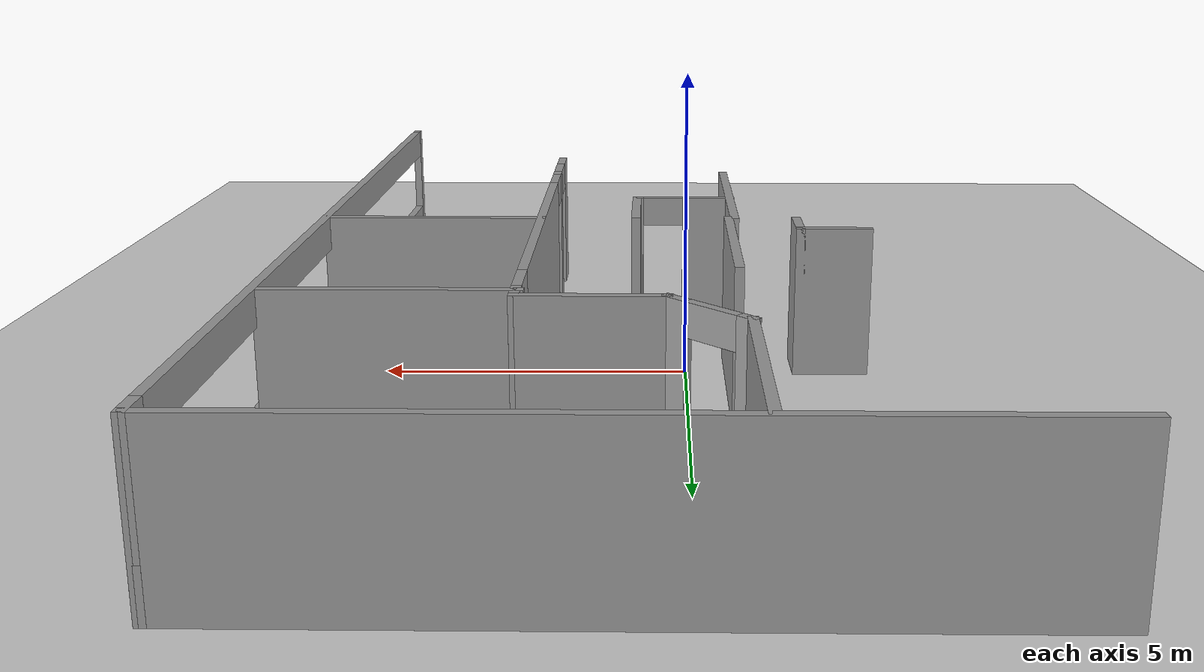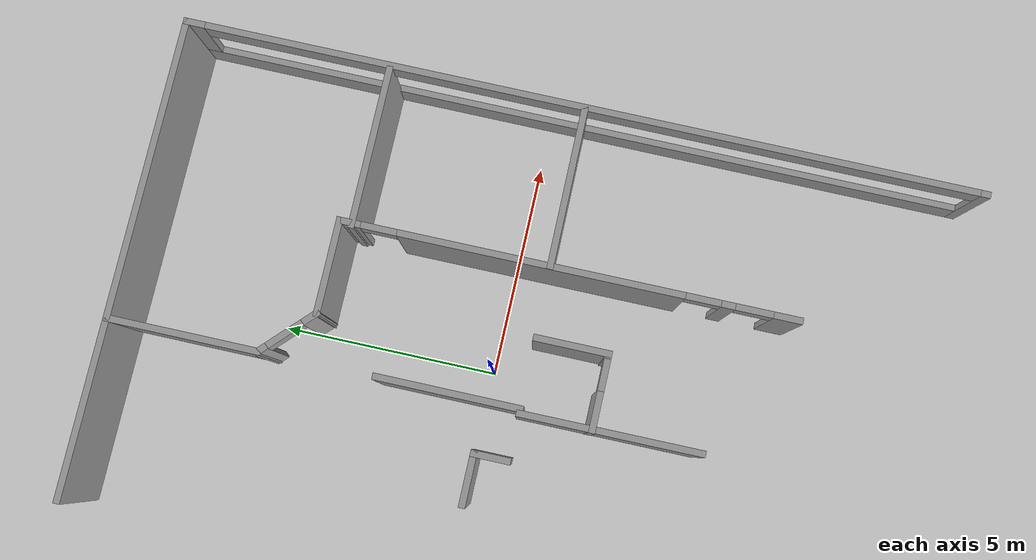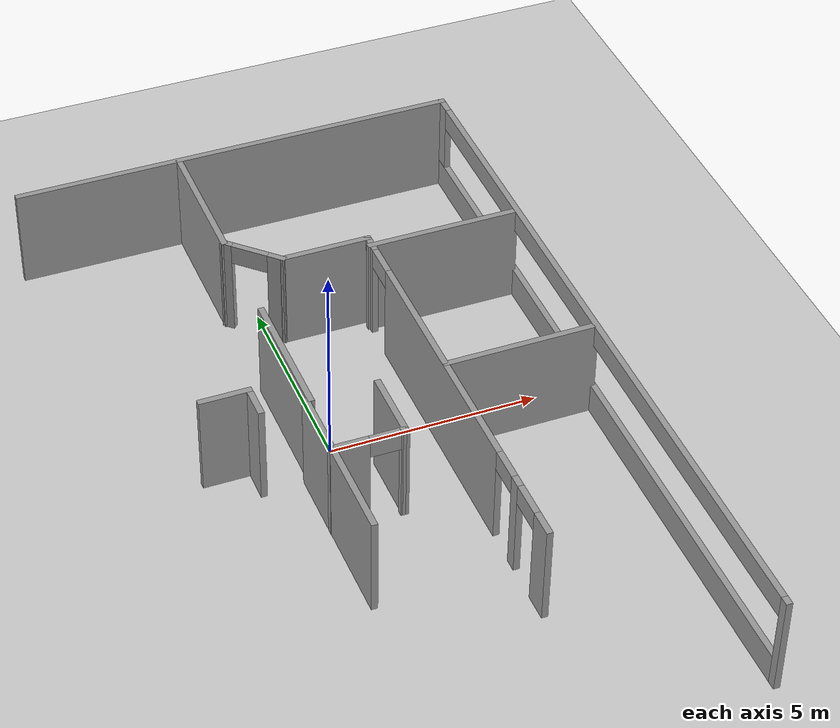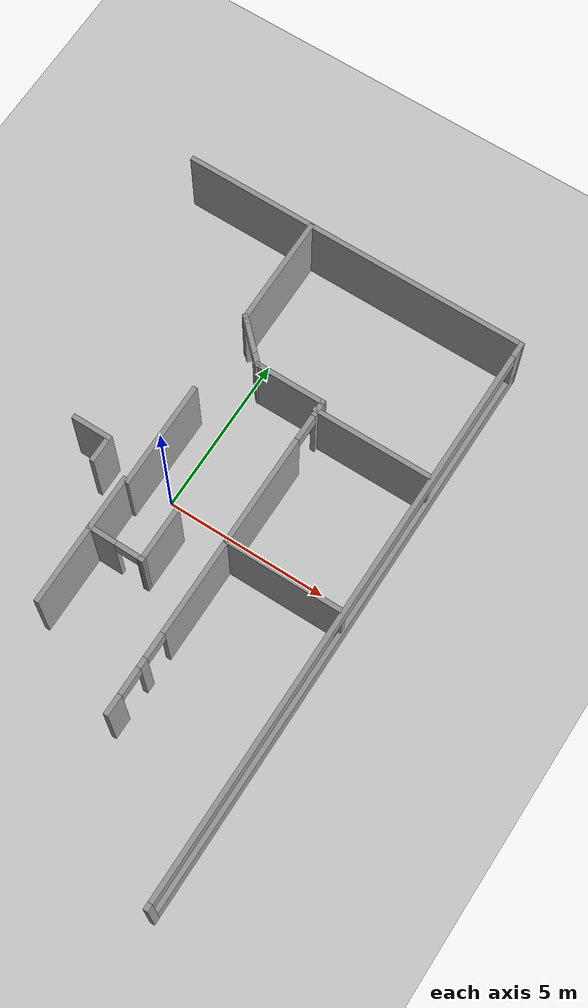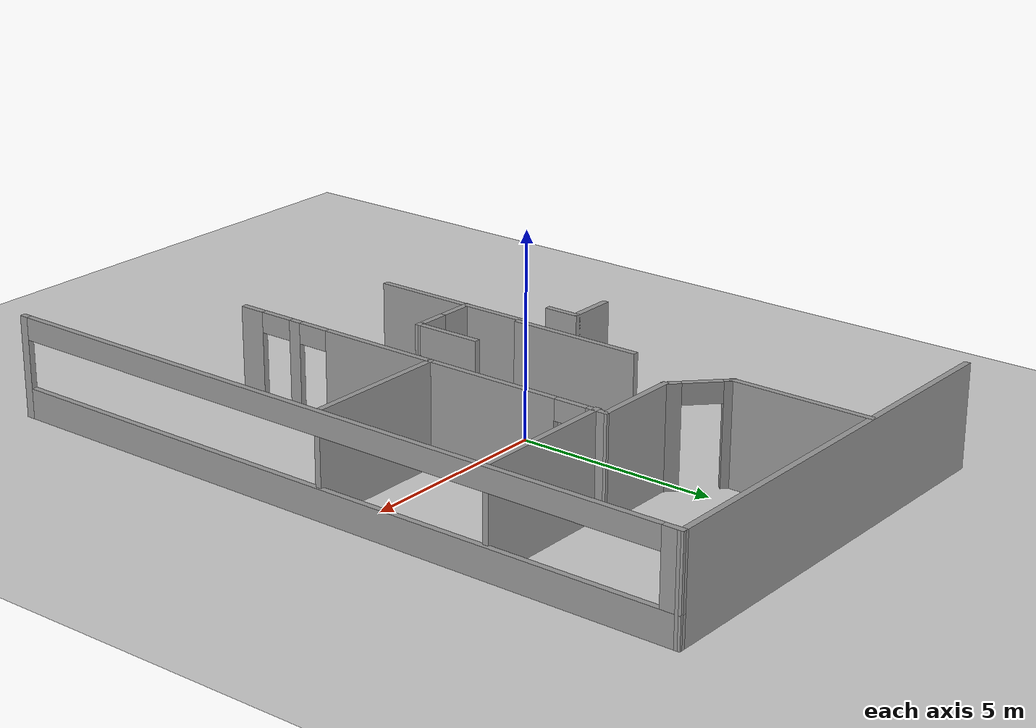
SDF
<sdf version="1.7">
 <world name="default">
  <model name="ground_plane">
   <static>1</static>
   <link name="link">
    <collision name="collision">
     <geometry><plane><normal>0 0 1</normal><size>100 100</size></plane></geometry>
     <surface><friction><ode><mu>100</mu><mu2>50</mu2></ode></friction></surface>
    </collision>
    <visual name="visual">
     <cast_shadows>0</cast_shadows>
     <geometry><plane><normal>0 0 1</normal><size>100 100</size></plane></geometry>
     <material>
      <script><uri>file://media/materials/scripts/gazebo.material</uri><name>Gazebo/Grey</name></script>
     </material>
    </visual>
   </link>
  </model>
  <model name="lake_harbour_office">
   <link name="Wall_1">
    <pose>3.2104 -0.472625 0 0 -0 1.57149</pose>
    <visual name="Wall_1_Visual_3">
     <pose>4.9339 0 1.25 0 -0 0</pose>
     <geometry><box><size>0.54781 0.15 2.5</size></box></geometry>
     <material>
      <script><uri>file://media/materials/scripts/gazebo.material</uri><name>Gazebo/Grey</name></script>
      <ambient>1 1 1 1</ambient>
      <shader type="pixel"/>
     </material>
     <meta><layer>0</layer></meta>
    </visual>
    <visual name="Wall_1_Visual_6">
     <pose>4.25227 0 2.25 0 -0 0</pose>
     <geometry><box><size>0.815447 0.15 0.5</size></box></geometry>
     <material>
      <script><uri>file://media/materials/scripts/gazebo.material</uri><name>Gazebo/Grey</name></script>
      <ambient>1 1 1 1</ambient>
      <shader type="pixel"/>
     </material>
     <meta><layer>0</layer></meta>
    </visual>
    <visual name="Wall_1_Visual_0">
     <pose>-4.88335 0 1.25 0 -0 0</pose>
     <geometry><box><size>0.648917 0.15 2.5</size></box></geometry>
     <material>
      <script><uri>file://media/materials/scripts/gazebo.material</uri><name>Gazebo/Grey</name></script>
      <ambient>1 1 1 1</ambient>
      <shader type="pixel"/>
     </material>
     <meta><layer>0</layer></meta>
    </visual>
    <visual name="Wall_1_Visual_4">
     <pose>-4.1362 0 2.25 0 -0 0</pose>
     <geometry><box><size>0.845376 0.15 0.5</size></box></geometry>
     <material>
      <script><uri>file://media/materials/scripts/gazebo.material</uri><name>Gazebo/Grey</name></script>
      <ambient>1 1 1 1</ambient>
      <shader type="pixel"/>
     </material>
     <meta><layer>0</layer></meta>
    </visual>
    <visual name="Wall_1_Visual_1">
     <pose>-3.55701 0 1.25 0 -0 0</pose>
     <geometry><box><size>0.313004 0.15 2.5</size></box></geometry>
     <material>
      <script><uri>file://media/materials/scripts/gazebo.material</uri><name>Gazebo/Grey</name></script>
      <ambient>1 1 1 1</ambient>
      <shader type="pixel"/>
     </material>
     <meta><layer>0</layer></meta>
    </visual>
    <visual name="Wall_1_Visual_5">
     <pose>-3.00452 0 2.25 0 -0 0</pose>
     <geometry><box><size>0.79198 0.15 0.5</size></box></geometry>
     <material>
      <script><uri>file://media/materials/scripts/gazebo.material</uri><name>Gazebo/Grey</name></script>
      <ambient>1 1 1 1</ambient>
      <shader type="pixel"/>
     </material>
     <meta><layer>0</layer></meta>
    </visual>
    <visual name="Wall_1_Visual_2">
     <pose>0.61801 0 1.25 0 -0 0</pose>
     <geometry><box><size>6.45307 0.15 2.5</size></box></geometry>
     <material>
      <script><uri>file://media/materials/scripts/gazebo.material</uri><name>Gazebo/Grey</name></script>
      <ambient>1 1 1 1</ambient>
      <shader type="pixel"/>
     </material>
     <meta><layer>0</layer></meta>
    </visual>
    <collision name="Wall_1_Collision_2">
     <pose>0.61801 0 1.25 0 -0 0</pose>
     <geometry><box><size>6.45307 0.15 2.5</size></box></geometry>
     <surface>
      <friction>
       <ode><mu>1</mu><mu2>1</mu2><fdir1>0 0 0</fdir1><slip1>0</slip1><slip2>0</slip2></ode>
       <torsional>
        <coefficient>1</coefficient>
        <patch_radius>0</patch_radius>
        <surface_radius>0</surface_radius>
        <use_patch_radius>1</use_patch_radius>
        <ode><slip>0</slip></ode>
       </torsional>
      </friction>
      <bounce><restitution_coefficient>0</restitution_coefficient><threshold>1e+06</threshold></bounce>
      <contact>
       <collide_without_contact>0</collide_without_contact>
       <collide_without_contact_bitmask>1</collide_without_contact_bitmask>
       <collide_bitmask>1</collide_bitmask>
       <ode>
        <soft_cfm>0</soft_cfm>
        <soft_erp>0.2</soft_erp>
        <kp>1e+13</kp>
        <kd>1</kd>
        <max_vel>0.01</max_vel>
        <min_depth>0</min_depth>
       </ode>
       <bullet>
        <split_impulse>1</split_impulse>
        <split_impulse_penetration_threshold>-0.01</split_impulse_penetration_threshold>
        <soft_cfm>0</soft_cfm>
        <soft_erp>0.2</soft_erp>
        <kp>1e+13</kp>
        <kd>1</kd>
       </bullet>
      </contact>
     </surface>
    </collision>
    <collision name="Wall_1_Collision_0">
     <pose>-4.88335 0 1.25 0 -0 0</pose>
     <geometry><box><size>0.648917 0.15 2.5</size></box></geometry>
     <surface>
      <friction>
       <ode><mu>1</mu><mu2>1</mu2><fdir1>0 0 0</fdir1><slip1>0</slip1><slip2>0</slip2></ode>
       <torsional>
        <coefficient>1</coefficient>
        <patch_radius>0</patch_radius>
        <surface_radius>0</surface_radius>
        <use_patch_radius>1</use_patch_radius>
        <ode><slip>0</slip></ode>
       </torsional>
      </friction>
      <bounce><restitution_coefficient>0</restitution_coefficient><threshold>1e+06</threshold></bounce>
      <contact>
       <collide_without_contact>0</collide_without_contact>
       <collide_without_contact_bitmask>1</collide_without_contact_bitmask>
       <collide_bitmask>1</collide_bitmask>
       <ode>
        <soft_cfm>0</soft_cfm>
        <soft_erp>0.2</soft_erp>
        <kp>1e+13</kp>
        <kd>1</kd>
        <max_vel>0.01</max_vel>
        <min_depth>0</min_depth>
       </ode>
       <bullet>
        <split_impulse>1</split_impulse>
        <split_impulse_penetration_threshold>-0.01</split_impulse_penetration_threshold>
        <soft_cfm>0</soft_cfm>
        <soft_erp>0.2</soft_erp>
        <kp>1e+13</kp>
        <kd>1</kd>
       </bullet>
      </contact>
     </surface>
    </collision>
    <collision name="Wall_1_Collision_3">
     <pose>4.9339 0 1.25 0 -0 0</pose>
     <geometry><box><size>0.54781 0.15 2.5</size></box></geometry>
     <surface>
      <friction>
       <ode><mu>1</mu><mu2>1</mu2><fdir1>0 0 0</fdir1><slip1>0</slip1><slip2>0</slip2></ode>
       <torsional>
        <coefficient>1</coefficient>
        <patch_radius>0</patch_radius>
        <surface_radius>0</surface_radius>
        <use_patch_radius>1</use_patch_radius>
        <ode><slip>0</slip></ode>
       </torsional>
      </friction>
      <bounce><restitution_coefficient>0</restitution_coefficient><threshold>1e+06</threshold></bounce>
      <contact>
       <collide_without_contact>0</collide_without_contact>
       <collide_without_contact_bitmask>1</collide_without_contact_bitmask>
       <collide_bitmask>1</collide_bitmask>
       <ode>
        <soft_cfm>0</soft_cfm>
        <soft_erp>0.2</soft_erp>
        <kp>1e+13</kp>
        <kd>1</kd>
        <max_vel>0.01</max_vel>
        <min_depth>0</min_depth>
       </ode>
       <bullet>
        <split_impulse>1</split_impulse>
        <split_impulse_penetration_threshold>-0.01</split_impulse_penetration_threshold>
        <soft_cfm>0</soft_cfm>
        <soft_erp>0.2</soft_erp>
        <kp>1e+13</kp>
        <kd>1</kd>
       </bullet>
      </contact>
     </surface>
    </collision>
    <collision name="Wall_1_Collision_6">
     <pose>4.25227 0 2.25 0 -0 0</pose>
     <geometry><box><size>0.815447 0.15 0.5</size></box></geometry>
     <surface>
      <friction>
       <ode><mu>1</mu><mu2>1</mu2><fdir1>0 0 0</fdir1><slip1>0</slip1><slip2>0</slip2></ode>
       <torsional>
        <coefficient>1</coefficient>
        <patch_radius>0</patch_radius>
        <surface_radius>0</surface_radius>
        <use_patch_radius>1</use_patch_radius>
        <ode><slip>0</slip></ode>
       </torsional>
      </friction>
      <bounce><restitution_coefficient>0</restitution_coefficient><threshold>1e+06</threshold></bounce>
      <contact>
       <collide_without_contact>0</collide_without_contact>
       <collide_without_contact_bitmask>1</collide_without_contact_bitmask>
       <collide_bitmask>1</collide_bitmask>
       <ode>
        <soft_cfm>0</soft_cfm>
        <soft_erp>0.2</soft_erp>
        <kp>1e+13</kp>
        <kd>1</kd>
        <max_vel>0.01</max_vel>
        <min_depth>0</min_depth>
       </ode>
       <bullet>
        <split_impulse>1</split_impulse>
        <split_impulse_penetration_threshold>-0.01</split_impulse_penetration_threshold>
        <soft_cfm>0</soft_cfm>
        <soft_erp>0.2</soft_erp>
        <kp>1e+13</kp>
        <kd>1</kd>
       </bullet>
      </contact>
     </surface>
    </collision>
    <collision name="Wall_1_Collision_1">
     <pose>-3.55701 0 1.25 0 -0 0</pose>
     <geometry><box><size>0.313004 0.15 2.5</size></box></geometry>
     <surface>
      <friction>
       <ode><mu>1</mu><mu2>1</mu2><fdir1>0 0 0</fdir1><slip1>0</slip1><slip2>0</slip2></ode>
       <torsional>
        <coefficient>1</coefficient>
        <patch_radius>0</patch_radius>
        <surface_radius>0</surface_radius>
        <use_patch_radius>1</use_patch_radius>
        <ode><slip>0</slip></ode>
       </torsional>
      </friction>
      <bounce><restitution_coefficient>0</restitution_coefficient><threshold>1e+06</threshold></bounce>
      <contact>
       <collide_without_contact>0</collide_without_contact>
       <collide_without_contact_bitmask>1</collide_without_contact_bitmask>
       <collide_bitmask>1</collide_bitmask>
       <ode>
        <soft_cfm>0</soft_cfm>
        <soft_erp>0.2</soft_erp>
        <kp>1e+13</kp>
        <kd>1</kd>
        <max_vel>0.01</max_vel>
        <min_depth>0</min_depth>
       </ode>
       <bullet>
        <split_impulse>1</split_impulse>
        <split_impulse_penetration_threshold>-0.01</split_impulse_penetration_threshold>
        <soft_cfm>0</soft_cfm>
        <soft_erp>0.2</soft_erp>
        <kp>1e+13</kp>
        <kd>1</kd>
       </bullet>
      </contact>
     </surface>
    </collision>
    <collision name="Wall_1_Collision_4">
     <pose>-4.1362 0 2.25 0 -0 0</pose>
     <geometry><box><size>0.845376 0.15 0.5</size></box></geometry>
     <surface>
      <friction>
       <ode><mu>1</mu><mu2>1</mu2><fdir1>0 0 0</fdir1><slip1>0</slip1><slip2>0</slip2></ode>
       <torsional>
        <coefficient>1</coefficient>
        <patch_radius>0</patch_radius>
        <surface_radius>0</surface_radius>
        <use_patch_radius>1</use_patch_radius>
        <ode><slip>0</slip></ode>
       </torsional>
      </friction>
      <bounce><restitution_coefficient>0</restitution_coefficient><threshold>1e+06</threshold></bounce>
      <contact>
       <collide_without_contact>0</collide_without_contact>
       <collide_without_contact_bitmask>1</collide_without_contact_bitmask>
       <collide_bitmask>1</collide_bitmask>
       <ode>
        <soft_cfm>0</soft_cfm>
        <soft_erp>0.2</soft_erp>
        <kp>1e+13</kp>
        <kd>1</kd>
        <max_vel>0.01</max_vel>
        <min_depth>0</min_depth>
       </ode>
       <bullet>
        <split_impulse>1</split_impulse>
        <split_impulse_penetration_threshold>-0.01</split_impulse_penetration_threshold>
        <soft_cfm>0</soft_cfm>
        <soft_erp>0.2</soft_erp>
        <kp>1e+13</kp>
        <kd>1</kd>
       </bullet>
      </contact>
     </surface>
    </collision>
    <collision name="Wall_1_Collision_5">
     <pose>-3.00452 0 2.25 0 -0 0</pose>
     <geometry><box><size>0.79198 0.15 0.5</size></box></geometry>
     <surface>
      <friction>
       <ode><mu>1</mu><mu2>1</mu2><fdir1>0 0 0</fdir1><slip1>0</slip1><slip2>0</slip2></ode>
       <torsional>
        <coefficient>1</coefficient>
        <patch_radius>0</patch_radius>
        <surface_radius>0</surface_radius>
        <use_patch_radius>1</use_patch_radius>
        <ode><slip>0</slip></ode>
       </torsional>
      </friction>
      <bounce><restitution_coefficient>0</restitution_coefficient><threshold>1e+06</threshold></bounce>
      <contact>
       <collide_without_contact>0</collide_without_contact>
       <collide_without_contact_bitmask>1</collide_without_contact_bitmask>
       <collide_bitmask>1</collide_bitmask>
       <ode>
        <soft_cfm>0</soft_cfm>
        <soft_erp>0.2</soft_erp>
        <kp>1e+13</kp>
        <kd>1</kd>
        <max_vel>0.01</max_vel>
        <min_depth>0</min_depth>
       </ode>
       <bullet>
        <split_impulse>1</split_impulse>
        <split_impulse_penetration_threshold>-0.01</split_impulse_penetration_threshold>
        <soft_cfm>0</soft_cfm>
        <soft_erp>0.2</soft_erp>
        <kp>1e+13</kp>
        <kd>1</kd>
       </bullet>
      </contact>
     </surface>
    </collision>
   </link>
   <link name="Wall_13">
    <pose>1.45427 9.08491 0 0 -0 3.14142</pose>
    <visual name="Wall_13_Visual">
     <pose>0 0 1.25 0 -0 0</pose>
     <geometry><box><size>10.9751 0.15 2.5</size></box></geometry>
     <material>
      <script><uri>file://media/materials/scripts/gazebo.material</uri><name>Gazebo/Grey</name></script>
      <ambient>1 1 1 1</ambient>
      <shader type="pixel"/>
     </material>
     <meta><layer>0</layer></meta>
    </visual>
    <collision name="Wall_13_Collision">
     <pose>0 0 1.25 0 -0 0</pose>
     <geometry><box><size>10.9751 0.15 2.5</size></box></geometry>
     <surface>
      <friction>
       <ode><mu>1</mu><mu2>1</mu2><fdir1>0 0 0</fdir1><slip1>0</slip1><slip2>0</slip2></ode>
       <torsional>
        <coefficient>1</coefficient>
        <patch_radius>0</patch_radius>
        <surface_radius>0</surface_radius>
        <use_patch_radius>1</use_patch_radius>
        <ode><slip>0</slip></ode>
       </torsional>
      </friction>
      <bounce><restitution_coefficient>0</restitution_coefficient><threshold>1e+06</threshold></bounce>
      <contact>
       <collide_without_contact>0</collide_without_contact>
       <collide_without_contact_bitmask>1</collide_without_contact_bitmask>
       <collide_bitmask>1</collide_bitmask>
       <ode>
        <soft_cfm>0</soft_cfm>
        <soft_erp>0.2</soft_erp>
        <kp>1e+13</kp>
        <kd>1</kd>
        <max_vel>0.01</max_vel>
        <min_depth>0</min_depth>
       </ode>
       <bullet>
        <split_impulse>1</split_impulse>
        <split_impulse_penetration_threshold>-0.01</split_impulse_penetration_threshold>
        <soft_cfm>0</soft_cfm>
        <soft_erp>0.2</soft_erp>
        <kp>1e+13</kp>
        <kd>1</kd>
       </bullet>
      </contact>
     </surface>
    </collision>
   </link>
   <link name="Wall_17">
    <pose>6.85256 -0.013794 0 0 -0 1.56923</pose>
    <visual name="Wall_17_Visual_1">
     <pose>0.111402 0 0.375 0 -0 0</pose>
     <geometry><box><size>18.1228 0.15 0.75</size></box></geometry>
     <material>
      <script><uri>file://media/materials/scripts/gazebo.material</uri><name>Gazebo/Grey</name></script>
      <ambient>1 1 1 1</ambient>
      <shader type="pixel"/>
     </material>
     <meta><layer>0</layer></meta>
    </visual>
    <visual name="Wall_17_Visual_3">
     <pose>-0.139985 0 2.225 0 -0 0</pose>
     <geometry><box><size>17.62 0.15 0.55</size></box></geometry>
     <material>
      <script><uri>file://media/materials/scripts/gazebo.material</uri><name>Gazebo/Grey</name></script>
      <ambient>1 1 1 1</ambient>
      <shader type="pixel"/>
     </material>
     <meta><layer>0</layer></meta>
    </visual>
    <visual name="Wall_17_Visual_2">
     <pose>8.9214 0 1.625 0 -0 0</pose>
     <geometry><box><size>0.502774 0.15 1.75</size></box></geometry>
     <material>
      <script><uri>file://media/materials/scripts/gazebo.material</uri><name>Gazebo/Grey</name></script>
      <ambient>1 1 1 1</ambient>
      <shader type="pixel"/>
     </material>
     <meta><layer>0</layer></meta>
    </visual>
    <visual name="Wall_17_Visual_0">
     <pose>-9.06139 0 1.25 0 -0 0</pose>
     <geometry><box><size>0.222803 0.15 2.5</size></box></geometry>
     <material>
      <script><uri>file://media/materials/scripts/gazebo.material</uri><name>Gazebo/Grey</name></script>
      <ambient>1 1 1 1</ambient>
      <shader type="pixel"/>
     </material>
     <meta><layer>0</layer></meta>
    </visual>
    <collision name="Wall_17_Collision_1">
     <pose>0.111402 0 0.375 0 -0 0</pose>
     <geometry><box><size>18.1228 0.15 0.75</size></box></geometry>
     <surface>
      <friction>
       <ode><mu>1</mu><mu2>1</mu2><fdir1>0 0 0</fdir1><slip1>0</slip1><slip2>0</slip2></ode>
       <torsional>
        <coefficient>1</coefficient>
        <patch_radius>0</patch_radius>
        <surface_radius>0</surface_radius>
        <use_patch_radius>1</use_patch_radius>
        <ode><slip>0</slip></ode>
       </torsional>
      </friction>
      <bounce><restitution_coefficient>0</restitution_coefficient><threshold>1e+06</threshold></bounce>
      <contact>
       <collide_without_contact>0</collide_without_contact>
       <collide_without_contact_bitmask>1</collide_without_contact_bitmask>
       <collide_bitmask>1</collide_bitmask>
       <ode>
        <soft_cfm>0</soft_cfm>
        <soft_erp>0.2</soft_erp>
        <kp>1e+13</kp>
        <kd>1</kd>
        <max_vel>0.01</max_vel>
        <min_depth>0</min_depth>
       </ode>
       <bullet>
        <split_impulse>1</split_impulse>
        <split_impulse_penetration_threshold>-0.01</split_impulse_penetration_threshold>
        <soft_cfm>0</soft_cfm>
        <soft_erp>0.2</soft_erp>
        <kp>1e+13</kp>
        <kd>1</kd>
       </bullet>
      </contact>
     </surface>
    </collision>
    <collision name="Wall_17_Collision_3">
     <pose>-0.139985 0 2.225 0 -0 0</pose>
     <geometry><box><size>17.62 0.15 0.55</size></box></geometry>
     <surface>
      <friction>
       <ode><mu>1</mu><mu2>1</mu2><fdir1>0 0 0</fdir1><slip1>0</slip1><slip2>0</slip2></ode>
       <torsional>
        <coefficient>1</coefficient>
        <patch_radius>0</patch_radius>
        <surface_radius>0</surface_radius>
        <use_patch_radius>1</use_patch_radius>
        <ode><slip>0</slip></ode>
       </torsional>
      </friction>
      <bounce><restitution_coefficient>0</restitution_coefficient><threshold>1e+06</threshold></bounce>
      <contact>
       <collide_without_contact>0</collide_without_contact>
       <collide_without_contact_bitmask>1</collide_without_contact_bitmask>
       <collide_bitmask>1</collide_bitmask>
       <ode>
        <soft_cfm>0</soft_cfm>
        <soft_erp>0.2</soft_erp>
        <kp>1e+13</kp>
        <kd>1</kd>
        <max_vel>0.01</max_vel>
        <min_depth>0</min_depth>
       </ode>
       <bullet>
        <split_impulse>1</split_impulse>
        <split_impulse_penetration_threshold>-0.01</split_impulse_penetration_threshold>
        <soft_cfm>0</soft_cfm>
        <soft_erp>0.2</soft_erp>
        <kp>1e+13</kp>
        <kd>1</kd>
       </bullet>
      </contact>
     </surface>
    </collision>
    <collision name="Wall_17_Collision_2">
     <pose>8.9214 0 1.625 0 -0 0</pose>
     <geometry><box><size>0.502774 0.15 1.75</size></box></geometry>
     <surface>
      <friction>
       <ode><mu>1</mu><mu2>1</mu2><fdir1>0 0 0</fdir1><slip1>0</slip1><slip2>0</slip2></ode>
       <torsional>
        <coefficient>1</coefficient>
        <patch_radius>0</patch_radius>
        <surface_radius>0</surface_radius>
        <use_patch_radius>1</use_patch_radius>
        <ode><slip>0</slip></ode>
       </torsional>
      </friction>
      <bounce><restitution_coefficient>0</restitution_coefficient><threshold>1e+06</threshold></bounce>
      <contact>
       <collide_without_contact>0</collide_without_contact>
       <collide_without_contact_bitmask>1</collide_without_contact_bitmask>
       <collide_bitmask>1</collide_bitmask>
       <ode>
        <soft_cfm>0</soft_cfm>
        <soft_erp>0.2</soft_erp>
        <kp>1e+13</kp>
        <kd>1</kd>
        <max_vel>0.01</max_vel>
        <min_depth>0</min_depth>
       </ode>
       <bullet>
        <split_impulse>1</split_impulse>
        <split_impulse_penetration_threshold>-0.01</split_impulse_penetration_threshold>
        <soft_cfm>0</soft_cfm>
        <soft_erp>0.2</soft_erp>
        <kp>1e+13</kp>
        <kd>1</kd>
       </bullet>
      </contact>
     </surface>
    </collision>
    <collision name="Wall_17_Collision_0">
     <pose>-9.06139 0 1.25 0 -0 0</pose>
     <geometry><box><size>0.222803 0.15 2.5</size></box></geometry>
     <surface>
      <friction>
       <ode><mu>1</mu><mu2>1</mu2><fdir1>0 0 0</fdir1><slip1>0</slip1><slip2>0</slip2></ode>
       <torsional>
        <coefficient>1</coefficient>
        <patch_radius>0</patch_radius>
        <surface_radius>0</surface_radius>
        <use_patch_radius>1</use_patch_radius>
        <ode><slip>0</slip></ode>
       </torsional>
      </friction>
      <bounce><restitution_coefficient>0</restitution_coefficient><threshold>1e+06</threshold></bounce>
      <contact>
       <collide_without_contact>0</collide_without_contact>
       <collide_without_contact_bitmask>1</collide_without_contact_bitmask>
       <collide_bitmask>1</collide_bitmask>
       <ode>
        <soft_cfm>0</soft_cfm>
        <soft_erp>0.2</soft_erp>
        <kp>1e+13</kp>
        <kd>1</kd>
        <max_vel>0.01</max_vel>
        <min_depth>0</min_depth>
       </ode>
       <bullet>
        <split_impulse>1</split_impulse>
        <split_impulse_penetration_threshold>-0.01</split_impulse_penetration_threshold>
        <soft_cfm>0</soft_cfm>
        <soft_erp>0.2</soft_erp>
        <kp>1e+13</kp>
        <kd>1</kd>
       </bullet>
      </contact>
     </surface>
    </collision>
   </link>
   <link name="Wall_38">
    <pose>2.15684 4.66018 0 0 -0 3.14159</pose>
    <visual name="Wall_38_Visual">
     <pose>0 0 1.25 0 -0 0</pose>
     <geometry><box><size>2.25 0.15 2.5</size></box></geometry>
     <material>
      <script><uri>file://media/materials/scripts/gazebo.material</uri><name>Gazebo/Grey</name></script>
      <ambient>1 1 1 1</ambient>
      <shader type="pixel"/>
     </material>
     <meta><layer>0</layer></meta>
    </visual>
    <collision name="Wall_38_Collision">
     <pose>0 0 1.25 0 -0 0</pose>
     <geometry><box><size>2.25 0.15 2.5</size></box></geometry>
     <surface>
      <friction>
       <ode><mu>1</mu><mu2>1</mu2><fdir1>0 0 0</fdir1><slip1>0</slip1><slip2>0</slip2></ode>
       <torsional>
        <coefficient>1</coefficient>
        <patch_radius>0</patch_radius>
        <surface_radius>0</surface_radius>
        <use_patch_radius>1</use_patch_radius>
        <ode><slip>0</slip></ode>
       </torsional>
      </friction>
      <bounce><restitution_coefficient>0</restitution_coefficient><threshold>1e+06</threshold></bounce>
      <contact>
       <collide_without_contact>0</collide_without_contact>
       <collide_without_contact_bitmask>1</collide_without_contact_bitmask>
       <collide_bitmask>1</collide_bitmask>
       <ode>
        <soft_cfm>0</soft_cfm>
        <soft_erp>0.2</soft_erp>
        <kp>1e+13</kp>
        <kd>1</kd>
        <max_vel>0.01</max_vel>
        <min_depth>0</min_depth>
       </ode>
       <bullet>
        <split_impulse>1</split_impulse>
        <split_impulse_penetration_threshold>-0.01</split_impulse_penetration_threshold>
        <soft_cfm>0</soft_cfm>
        <soft_erp>0.2</soft_erp>
        <kp>1e+13</kp>
        <kd>1</kd>
       </bullet>
      </contact>
     </surface>
    </collision>
   </link>
   <link name="Wall_39">
    <pose>0.56627 5.18296 0 0 -0 2.37292</pose>
    <visual name="Wall_39_Visual_0">
     <pose>-0.606997 0 1.25 0 -0 0</pose>
     <geometry><box><size>0.440013 0.15 2.5</size></box></geometry>
     <material>
      <script><uri>file://media/materials/scripts/gazebo.material</uri><name>Gazebo/Grey</name></script>
      <ambient>1 1 1 1</ambient>
      <shader type="pixel"/>
     </material>
     <meta><layer>0</layer></meta>
    </visual>
    <visual name="Wall_39_Visual_2">
     <pose>0.069956 0 2.25 0 -0 0</pose>
     <geometry><box><size>0.913893 0.15 0.5</size></box></geometry>
     <material>
      <script><uri>file://media/materials/scripts/gazebo.material</uri><name>Gazebo/Grey</name></script>
      <ambient>1 1 1 1</ambient>
      <shader type="pixel"/>
     </material>
     <meta><layer>0</layer></meta>
    </visual>
    <visual name="Wall_39_Visual_1">
     <pose>0.676953 0 1.25 0 -0 0</pose>
     <geometry><box><size>0.300101 0.15 2.5</size></box></geometry>
     <material>
      <script><uri>file://media/materials/scripts/gazebo.material</uri><name>Gazebo/Grey</name></script>
      <ambient>1 1 1 1</ambient>
      <shader type="pixel"/>
     </material>
     <meta><layer>0</layer></meta>
    </visual>
    <collision name="Wall_39_Collision_1">
     <pose>0.676953 0 1.25 0 -0 0</pose>
     <geometry><box><size>0.300101 0.15 2.5</size></box></geometry>
     <surface>
      <friction>
       <ode><mu>1</mu><mu2>1</mu2><fdir1>0 0 0</fdir1><slip1>0</slip1><slip2>0</slip2></ode>
       <torsional>
        <coefficient>1</coefficient>
        <patch_radius>0</patch_radius>
        <surface_radius>0</surface_radius>
        <use_patch_radius>1</use_patch_radius>
        <ode><slip>0</slip></ode>
       </torsional>
      </friction>
      <bounce><restitution_coefficient>0</restitution_coefficient><threshold>1e+06</threshold></bounce>
      <contact>
       <collide_without_contact>0</collide_without_contact>
       <collide_without_contact_bitmask>1</collide_without_contact_bitmask>
       <collide_bitmask>1</collide_bitmask>
       <ode>
        <soft_cfm>0</soft_cfm>
        <soft_erp>0.2</soft_erp>
        <kp>1e+13</kp>
        <kd>1</kd>
        <max_vel>0.01</max_vel>
        <min_depth>0</min_depth>
       </ode>
       <bullet>
        <split_impulse>1</split_impulse>
        <split_impulse_penetration_threshold>-0.01</split_impulse_penetration_threshold>
        <soft_cfm>0</soft_cfm>
        <soft_erp>0.2</soft_erp>
        <kp>1e+13</kp>
        <kd>1</kd>
       </bullet>
      </contact>
     </surface>
    </collision>
    <collision name="Wall_39_Collision_0">
     <pose>-0.606997 0 1.25 0 -0 0</pose>
     <geometry><box><size>0.440013 0.15 2.5</size></box></geometry>
     <surface>
      <friction>
       <ode><mu>1</mu><mu2>1</mu2><fdir1>0 0 0</fdir1><slip1>0</slip1><slip2>0</slip2></ode>
       <torsional>
        <coefficient>1</coefficient>
        <patch_radius>0</patch_radius>
        <surface_radius>0</surface_radius>
        <use_patch_radius>1</use_patch_radius>
        <ode><slip>0</slip></ode>
       </torsional>
      </friction>
      <bounce><restitution_coefficient>0</restitution_coefficient><threshold>1e+06</threshold></bounce>
      <contact>
       <collide_without_contact>0</collide_without_contact>
       <collide_without_contact_bitmask>1</collide_without_contact_bitmask>
       <collide_bitmask>1</collide_bitmask>
       <ode>
        <soft_cfm>0</soft_cfm>
        <soft_erp>0.2</soft_erp>
        <kp>1e+13</kp>
        <kd>1</kd>
        <max_vel>0.01</max_vel>
        <min_depth>0</min_depth>
       </ode>
       <bullet>
        <split_impulse>1</split_impulse>
        <split_impulse_penetration_threshold>-0.01</split_impulse_penetration_threshold>
        <soft_cfm>0</soft_cfm>
        <soft_erp>0.2</soft_erp>
        <kp>1e+13</kp>
        <kd>1</kd>
       </bullet>
      </contact>
     </surface>
    </collision>
    <collision name="Wall_39_Collision_2">
     <pose>0.069956 0 2.25 0 -0 0</pose>
     <geometry><box><size>0.913893 0.15 0.5</size></box></geometry>
     <surface>
      <friction>
       <ode><mu>1</mu><mu2>1</mu2><fdir1>0 0 0</fdir1><slip1>0</slip1><slip2>0</slip2></ode>
       <torsional>
        <coefficient>1</coefficient>
        <patch_radius>0</patch_radius>
        <surface_radius>0</surface_radius>
        <use_patch_radius>1</use_patch_radius>
        <ode><slip>0</slip></ode>
       </torsional>
      </friction>
      <bounce><restitution_coefficient>0</restitution_coefficient><threshold>1e+06</threshold></bounce>
      <contact>
       <collide_without_contact>0</collide_without_contact>
       <collide_without_contact_bitmask>1</collide_without_contact_bitmask>
       <collide_bitmask>1</collide_bitmask>
       <ode>
        <soft_cfm>0</soft_cfm>
        <soft_erp>0.2</soft_erp>
        <kp>1e+13</kp>
        <kd>1</kd>
        <max_vel>0.01</max_vel>
        <min_depth>0</min_depth>
       </ode>
       <bullet>
        <split_impulse>1</split_impulse>
        <split_impulse_penetration_threshold>-0.01</split_impulse_penetration_threshold>
        <soft_cfm>0</soft_cfm>
        <soft_erp>0.2</soft_erp>
        <kp>1e+13</kp>
        <kd>1</kd>
       </bullet>
      </contact>
     </surface>
    </collision>
   </link>
   <link name="Wall_43">
    <pose>0.025706 7.38074 0 0 -0 1.5708</pose>
    <visual name="Wall_43_Visual">
     <pose>0 0 1.25 0 -0 0</pose>
     <geometry><box><size>3.5 0.15 2.5</size></box></geometry>
     <material>
      <script><uri>file://media/materials/scripts/gazebo.material</uri><name>Gazebo/Grey</name></script>
      <ambient>1 1 1 1</ambient>
      <shader type="pixel"/>
     </material>
     <meta><layer>0</layer></meta>
    </visual>
    <collision name="Wall_43_Collision">
     <pose>0 0 1.25 0 -0 0</pose>
     <geometry><box><size>3.5 0.15 2.5</size></box></geometry>
     <surface>
      <friction>
       <ode><mu>1</mu><mu2>1</mu2><fdir1>0 0 0</fdir1><slip1>0</slip1><slip2>0</slip2></ode>
       <torsional>
        <coefficient>1</coefficient>
        <patch_radius>0</patch_radius>
        <surface_radius>0</surface_radius>
        <use_patch_radius>1</use_patch_radius>
        <ode><slip>0</slip></ode>
       </torsional>
      </friction>
      <bounce><restitution_coefficient>0</restitution_coefficient><threshold>1e+06</threshold></bounce>
      <contact>
       <collide_without_contact>0</collide_without_contact>
       <collide_without_contact_bitmask>1</collide_without_contact_bitmask>
       <collide_bitmask>1</collide_bitmask>
       <ode>
        <soft_cfm>0</soft_cfm>
        <soft_erp>0.2</soft_erp>
        <kp>1e+13</kp>
        <kd>1</kd>
        <max_vel>0.01</max_vel>
        <min_depth>0</min_depth>
       </ode>
       <bullet>
        <split_impulse>1</split_impulse>
        <split_impulse_penetration_threshold>-0.01</split_impulse_penetration_threshold>
        <soft_cfm>0</soft_cfm>
        <soft_erp>0.2</soft_erp>
        <kp>1e+13</kp>
        <kd>1</kd>
       </bullet>
      </contact>
     </surface>
    </collision>
   </link>
   <link name="Wall_51">
    <pose>0.050344 1.4998 0 0 0 -1.57077</pose>
    <visual name="Wall_51_Visual">
     <pose>0 0 1.25 0 -0 0</pose>
     <geometry><box><size>3.33647 0.15 2.5</size></box></geometry>
     <material>
      <script><uri>file://media/materials/scripts/gazebo.material</uri><name>Gazebo/Grey</name></script>
      <ambient>1 1 1 1</ambient>
      <shader type="pixel"/>
     </material>
     <meta><layer>0</layer></meta>
    </visual>
    <collision name="Wall_51_Collision">
     <pose>0 0 1.25 0 -0 0</pose>
     <geometry><box><size>3.33647 0.15 2.5</size></box></geometry>
     <surface>
      <friction>
       <ode><mu>1</mu><mu2>1</mu2><fdir1>0 0 0</fdir1><slip1>0</slip1><slip2>0</slip2></ode>
       <torsional>
        <coefficient>1</coefficient>
        <patch_radius>0</patch_radius>
        <surface_radius>0</surface_radius>
        <use_patch_radius>1</use_patch_radius>
        <ode><slip>0</slip></ode>
       </torsional>
      </friction>
      <bounce><restitution_coefficient>0</restitution_coefficient><threshold>1e+06</threshold></bounce>
      <contact>
       <collide_without_contact>0</collide_without_contact>
       <collide_without_contact_bitmask>1</collide_without_contact_bitmask>
       <collide_bitmask>1</collide_bitmask>
       <ode>
        <soft_cfm>0</soft_cfm>
        <soft_erp>0.2</soft_erp>
        <kp>1e+13</kp>
        <kd>1</kd>
        <max_vel>0.01</max_vel>
        <min_depth>0</min_depth>
       </ode>
       <bullet>
        <split_impulse>1</split_impulse>
        <split_impulse_penetration_threshold>-0.01</split_impulse_penetration_threshold>
        <soft_cfm>0</soft_cfm>
        <soft_erp>0.2</soft_erp>
        <kp>1e+13</kp>
        <kd>1</kd>
       </bullet>
      </contact>
     </surface>
    </collision>
   </link>
   <link name="Wall_58">
    <pose>-1.63843 0.666154 0 0 -0 0</pose>
    <visual name="Wall_58_Visual">
     <pose>0 0 1.25 0 -0 0</pose>
     <geometry><box><size>1.25 0.15 2.5</size></box></geometry>
     <material>
      <script><uri>file://media/materials/scripts/gazebo.material</uri><name>Gazebo/Grey</name></script>
      <ambient>1 1 1 1</ambient>
      <shader type="pixel"/>
     </material>
     <meta><layer>0</layer></meta>
    </visual>
    <collision name="Wall_58_Collision">
     <pose>0 0 1.25 0 -0 0</pose>
     <geometry><box><size>1.25 0.15 2.5</size></box></geometry>
     <surface>
      <friction>
       <ode><mu>1</mu><mu2>1</mu2><fdir1>0 0 0</fdir1><slip1>0</slip1><slip2>0</slip2></ode>
       <torsional>
        <coefficient>1</coefficient>
        <patch_radius>0</patch_radius>
        <surface_radius>0</surface_radius>
        <use_patch_radius>1</use_patch_radius>
        <ode><slip>0</slip></ode>
       </torsional>
      </friction>
      <bounce><restitution_coefficient>0</restitution_coefficient><threshold>1e+06</threshold></bounce>
      <contact>
       <collide_without_contact>0</collide_without_contact>
       <collide_without_contact_bitmask>1</collide_without_contact_bitmask>
       <collide_bitmask>1</collide_bitmask>
       <ode>
        <soft_cfm>0</soft_cfm>
        <soft_erp>0.2</soft_erp>
        <kp>1e+13</kp>
        <kd>1</kd>
        <max_vel>0.01</max_vel>
        <min_depth>0</min_depth>
       </ode>
       <bullet>
        <split_impulse>1</split_impulse>
        <split_impulse_penetration_threshold>-0.01</split_impulse_penetration_threshold>
        <soft_cfm>0</soft_cfm>
        <soft_erp>0.2</soft_erp>
        <kp>1e+13</kp>
        <kd>1</kd>
       </bullet>
      </contact>
     </surface>
    </collision>
   </link>
   <link name="Wall_59">
    <pose>-1.08843 0.297196 0 0 0 -1.5708</pose>
    <visual name="Wall_59_Visual">
     <pose>0 0 1.25 0 -0 0</pose>
     <geometry><box><size>0.887915 0.15 2.5</size></box></geometry>
     <material>
      <script><uri>file://media/materials/scripts/gazebo.material</uri><name>Gazebo/Grey</name></script>
      <ambient>1 1 1 1</ambient>
      <shader type="pixel"/>
     </material>
     <meta><layer>0</layer></meta>
    </visual>
    <collision name="Wall_59_Collision">
     <pose>0 0 1.25 0 -0 0</pose>
     <geometry><box><size>0.887915 0.15 2.5</size></box></geometry>
     <surface>
      <friction>
       <ode><mu>1</mu><mu2>1</mu2><fdir1>0 0 0</fdir1><slip1>0</slip1><slip2>0</slip2></ode>
       <torsional>
        <coefficient>1</coefficient>
        <patch_radius>0</patch_radius>
        <surface_radius>0</surface_radius>
        <use_patch_radius>1</use_patch_radius>
        <ode><slip>0</slip></ode>
       </torsional>
      </friction>
      <bounce><restitution_coefficient>0</restitution_coefficient><threshold>1e+06</threshold></bounce>
      <contact>
       <collide_without_contact>0</collide_without_contact>
       <collide_without_contact_bitmask>1</collide_without_contact_bitmask>
       <collide_bitmask>1</collide_bitmask>
       <ode>
        <soft_cfm>0</soft_cfm>
        <soft_erp>0.2</soft_erp>
        <kp>1e+13</kp>
        <kd>1</kd>
        <max_vel>0.01</max_vel>
        <min_depth>0</min_depth>
       </ode>
       <bullet>
        <split_impulse>1</split_impulse>
        <split_impulse_penetration_threshold>-0.01</split_impulse_penetration_threshold>
        <soft_cfm>0</soft_cfm>
        <soft_erp>0.2</soft_erp>
        <kp>1e+13</kp>
        <kd>1</kd>
       </bullet>
      </contact>
     </surface>
    </collision>
   </link>
   <link name="Wall_61">
    <pose>5.01016 -0.065112 0 0 -0 0.001455</pose>
    <visual name="Wall_61_Visual">
     <pose>0 0 1.25 0 -0 0</pose>
     <geometry><box><size>3.72819 0.15 2.5</size></box></geometry>
     <material>
      <script><uri>file://media/materials/scripts/gazebo.material</uri><name>Gazebo/Grey</name></script>
      <ambient>1 1 1 1</ambient>
      <shader type="pixel"/>
     </material>
     <meta><layer>0</layer></meta>
    </visual>
    <collision name="Wall_61_Collision">
     <pose>0 0 1.25 0 -0 0</pose>
     <geometry><box><size>3.72819 0.15 2.5</size></box></geometry>
     <surface>
      <friction>
       <ode><mu>1</mu><mu2>1</mu2><fdir1>0 0 0</fdir1><slip1>0</slip1><slip2>0</slip2></ode>
       <torsional>
        <coefficient>1</coefficient>
        <patch_radius>0</patch_radius>
        <surface_radius>0</surface_radius>
        <use_patch_radius>1</use_patch_radius>
        <ode><slip>0</slip></ode>
       </torsional>
      </friction>
      <bounce><restitution_coefficient>0</restitution_coefficient><threshold>1e+06</threshold></bounce>
      <contact>
       <collide_without_contact>0</collide_without_contact>
       <collide_without_contact_bitmask>1</collide_without_contact_bitmask>
       <collide_bitmask>1</collide_bitmask>
       <ode>
        <soft_cfm>0</soft_cfm>
        <soft_erp>0.2</soft_erp>
        <kp>1e+13</kp>
        <kd>1</kd>
        <max_vel>0.01</max_vel>
        <min_depth>0</min_depth>
       </ode>
       <bullet>
        <split_impulse>1</split_impulse>
        <split_impulse_penetration_threshold>-0.01</split_impulse_penetration_threshold>
        <soft_cfm>0</soft_cfm>
        <soft_erp>0.2</soft_erp>
        <kp>1e+13</kp>
        <kd>1</kd>
       </bullet>
      </contact>
     </surface>
    </collision>
   </link>
   <link name="Wall_66">
    <pose>4.96435 4.38481 0 0 -0 3.14159</pose>
    <visual name="Wall_66_Visual">
     <pose>0 0 1.25 0 -0 0</pose>
     <geometry><box><size>3.75 0.15 2.5</size></box></geometry>
     <material>
      <script><uri>file://media/materials/scripts/gazebo.material</uri><name>Gazebo/Grey</name></script>
      <ambient>1 1 1 1</ambient>
      <shader type="pixel"/>
     </material>
     <meta><layer>0</layer></meta>
    </visual>
    <collision name="Wall_66_Collision">
     <pose>0 0 1.25 0 -0 0</pose>
     <geometry><box><size>3.75 0.15 2.5</size></box></geometry>
     <surface>
      <friction>
       <ode><mu>1</mu><mu2>1</mu2><fdir1>0 0 0</fdir1><slip1>0</slip1><slip2>0</slip2></ode>
       <torsional>
        <coefficient>1</coefficient>
        <patch_radius>0</patch_radius>
        <surface_radius>0</surface_radius>
        <use_patch_radius>1</use_patch_radius>
        <ode><slip>0</slip></ode>
       </torsional>
      </friction>
      <bounce><restitution_coefficient>0</restitution_coefficient><threshold>1e+06</threshold></bounce>
      <contact>
       <collide_without_contact>0</collide_without_contact>
       <collide_without_contact_bitmask>1</collide_without_contact_bitmask>
       <collide_bitmask>1</collide_bitmask>
       <ode>
        <soft_cfm>0</soft_cfm>
        <soft_erp>0.2</soft_erp>
        <kp>1e+13</kp>
        <kd>1</kd>
        <max_vel>0.01</max_vel>
        <min_depth>0</min_depth>
       </ode>
       <bullet>
        <split_impulse>1</split_impulse>
        <split_impulse_penetration_threshold>-0.01</split_impulse_penetration_threshold>
        <soft_cfm>0</soft_cfm>
        <soft_erp>0.2</soft_erp>
        <kp>1e+13</kp>
        <kd>1</kd>
       </bullet>
      </contact>
     </surface>
    </collision>
   </link>
   <link name="Wall_68">
    <pose>1.61674 -0.909883 0 0 0 -1.5708</pose>
    <visual name="Wall_68_Visual">
     <pose>0 0 1.25 0 -0 0</pose>
     <geometry><box><size>1.75 0.15 2.5</size></box></geometry>
     <material>
      <script><uri>file://media/materials/scripts/gazebo.material</uri><name>Gazebo/Grey</name></script>
      <ambient>1 1 1 1</ambient>
      <shader type="pixel"/>
     </material>
     <meta><layer>0</layer></meta>
    </visual>
    <collision name="Wall_68_Collision">
     <pose>0 0 1.25 0 -0 0</pose>
     <geometry><box><size>1.75 0.15 2.5</size></box></geometry>
     <surface>
      <friction>
       <ode><mu>1</mu><mu2>1</mu2><fdir1>0 0 0</fdir1><slip1>0</slip1><slip2>0</slip2></ode>
       <torsional>
        <coefficient>1</coefficient>
        <patch_radius>0</patch_radius>
        <surface_radius>0</surface_radius>
        <use_patch_radius>1</use_patch_radius>
        <ode><slip>0</slip></ode>
       </torsional>
      </friction>
      <bounce><restitution_coefficient>0</restitution_coefficient><threshold>1e+06</threshold></bounce>
      <contact>
       <collide_without_contact>0</collide_without_contact>
       <collide_without_contact_bitmask>1</collide_without_contact_bitmask>
       <collide_bitmask>1</collide_bitmask>
       <ode>
        <soft_cfm>0</soft_cfm>
        <soft_erp>0.2</soft_erp>
        <kp>1e+13</kp>
        <kd>1</kd>
        <max_vel>0.01</max_vel>
        <min_depth>0</min_depth>
       </ode>
       <bullet>
        <split_impulse>1</split_impulse>
        <split_impulse_penetration_threshold>-0.01</split_impulse_penetration_threshold>
        <soft_cfm>0</soft_cfm>
        <soft_erp>0.2</soft_erp>
        <kp>1e+13</kp>
        <kd>1</kd>
       </bullet>
      </contact>
     </surface>
    </collision>
   </link>
   <link name="Wall_84">
    <pose>-0.044096 -2.10247 0 0 -0 1.5737</pose>
    <visual name="Wall_84_Visual">
     <pose>0 0 1.25 0 -0 0</pose>
     <geometry><box><size>4.14879 0.15 2.5</size></box></geometry>
     <material>
      <script><uri>file://media/materials/scripts/gazebo.material</uri><name>Gazebo/Grey</name></script>
      <ambient>1 1 1 1</ambient>
      <shader type="pixel"/>
     </material>
     <meta><layer>0</layer></meta>
    </visual>
    <collision name="Wall_84_Collision">
     <pose>0 0 1.25 0 -0 0</pose>
     <geometry><box><size>4.14879 0.15 2.5</size></box></geometry>
     <surface>
      <friction>
       <ode><mu>1</mu><mu2>1</mu2><fdir1>0 0 0</fdir1><slip1>0</slip1><slip2>0</slip2></ode>
       <torsional>
        <coefficient>1</coefficient>
        <patch_radius>0</patch_radius>
        <surface_radius>0</surface_radius>
        <use_patch_radius>1</use_patch_radius>
        <ode><slip>0</slip></ode>
       </torsional>
      </friction>
      <bounce><restitution_coefficient>0</restitution_coefficient><threshold>1e+06</threshold></bounce>
      <contact>
       <collide_without_contact>0</collide_without_contact>
       <collide_without_contact_bitmask>1</collide_without_contact_bitmask>
       <collide_bitmask>1</collide_bitmask>
       <ode>
        <soft_cfm>0</soft_cfm>
        <soft_erp>0.2</soft_erp>
        <kp>1e+13</kp>
        <kd>1</kd>
        <max_vel>0.01</max_vel>
        <min_depth>0</min_depth>
       </ode>
       <bullet>
        <split_impulse>1</split_impulse>
        <split_impulse_penetration_threshold>-0.01</split_impulse_penetration_threshold>
        <soft_cfm>0</soft_cfm>
        <soft_erp>0.2</soft_erp>
        <kp>1e+13</kp>
        <kd>1</kd>
       </bullet>
      </contact>
     </surface>
    </collision>
   </link>
   <link name="Wall_88">
    <pose>0.781734 -1.70595 0 0 0 -0.004714</pose>
    <visual name="Wall_88_Visual_0">
     <pose>-0.449188 0 1.25 0 -0 0</pose>
     <geometry><box><size>0.921653 0.15 2.5</size></box></geometry>
     <material>
      <script><uri>file://media/materials/scripts/gazebo.material</uri><name>Gazebo/Grey</name></script>
      <ambient>1 1 1 1</ambient>
      <shader type="pixel"/>
     </material>
     <meta><layer>0</layer></meta>
    </visual>
    <visual name="Wall_88_Visual_1">
     <pose>0.817346 0 1.25 0 -0 0</pose>
     <geometry><box><size>0.185338 0.15 2.5</size></box></geometry>
     <material>
      <script><uri>file://media/materials/scripts/gazebo.material</uri><name>Gazebo/Grey</name></script>
      <ambient>1 1 1 1</ambient>
      <shader type="pixel"/>
     </material>
     <meta><layer>0</layer></meta>
    </visual>
    <visual name="Wall_88_Visual_2">
     <pose>0.368158 0 2.25 0 -0 0</pose>
     <geometry><box><size>0.713039 0.15 0.5</size></box></geometry>
     <material>
      <script><uri>file://media/materials/scripts/gazebo.material</uri><name>Gazebo/Grey</name></script>
      <ambient>1 1 1 1</ambient>
      <shader type="pixel"/>
     </material>
     <meta><layer>0</layer></meta>
    </visual>
    <collision name="Wall_88_Collision_0">
     <pose>-0.449188 0 1.25 0 -0 0</pose>
     <geometry><box><size>0.921653 0.15 2.5</size></box></geometry>
     <surface>
      <friction>
       <ode><mu>1</mu><mu2>1</mu2><fdir1>0 0 0</fdir1><slip1>0</slip1><slip2>0</slip2></ode>
       <torsional>
        <coefficient>1</coefficient>
        <patch_radius>0</patch_radius>
        <surface_radius>0</surface_radius>
        <use_patch_radius>1</use_patch_radius>
        <ode><slip>0</slip></ode>
       </torsional>
      </friction>
      <bounce><restitution_coefficient>0</restitution_coefficient><threshold>1e+06</threshold></bounce>
      <contact>
       <collide_without_contact>0</collide_without_contact>
       <collide_without_contact_bitmask>1</collide_without_contact_bitmask>
       <collide_bitmask>1</collide_bitmask>
       <ode>
        <soft_cfm>0</soft_cfm>
        <soft_erp>0.2</soft_erp>
        <kp>1e+13</kp>
        <kd>1</kd>
        <max_vel>0.01</max_vel>
        <min_depth>0</min_depth>
       </ode>
       <bullet>
        <split_impulse>1</split_impulse>
        <split_impulse_penetration_threshold>-0.01</split_impulse_penetration_threshold>
        <soft_cfm>0</soft_cfm>
        <soft_erp>0.2</soft_erp>
        <kp>1e+13</kp>
        <kd>1</kd>
       </bullet>
      </contact>
     </surface>
    </collision>
    <collision name="Wall_88_Collision_1">
     <pose>0.817346 0 1.25 0 -0 0</pose>
     <geometry><box><size>0.185338 0.15 2.5</size></box></geometry>
     <surface>
      <friction>
       <ode><mu>1</mu><mu2>1</mu2><fdir1>0 0 0</fdir1><slip1>0</slip1><slip2>0</slip2></ode>
       <torsional>
        <coefficient>1</coefficient>
        <patch_radius>0</patch_radius>
        <surface_radius>0</surface_radius>
        <use_patch_radius>1</use_patch_radius>
        <ode><slip>0</slip></ode>
       </torsional>
      </friction>
      <bounce><restitution_coefficient>0</restitution_coefficient><threshold>1e+06</threshold></bounce>
      <contact>
       <collide_without_contact>0</collide_without_contact>
       <collide_without_contact_bitmask>1</collide_without_contact_bitmask>
       <collide_bitmask>1</collide_bitmask>
       <ode>
        <soft_cfm>0</soft_cfm>
        <soft_erp>0.2</soft_erp>
        <kp>1e+13</kp>
        <kd>1</kd>
        <max_vel>0.01</max_vel>
        <min_depth>0</min_depth>
       </ode>
       <bullet>
        <split_impulse>1</split_impulse>
        <split_impulse_penetration_threshold>-0.01</split_impulse_penetration_threshold>
        <soft_cfm>0</soft_cfm>
        <soft_erp>0.2</soft_erp>
        <kp>1e+13</kp>
        <kd>1</kd>
       </bullet>
      </contact>
     </surface>
    </collision>
    <collision name="Wall_88_Collision_2">
     <pose>0.368158 0 2.25 0 -0 0</pose>
     <geometry><box><size>0.713039 0.15 0.5</size></box></geometry>
     <surface>
      <friction>
       <ode><mu>1</mu><mu2>1</mu2><fdir1>0 0 0</fdir1><slip1>0</slip1><slip2>0</slip2></ode>
       <torsional>
        <coefficient>1</coefficient>
        <patch_radius>0</patch_radius>
        <surface_radius>0</surface_radius>
        <use_patch_radius>1</use_patch_radius>
        <ode><slip>0</slip></ode>
       </torsional>
      </friction>
      <bounce><restitution_coefficient>0</restitution_coefficient><threshold>1e+06</threshold></bounce>
      <contact>
       <collide_without_contact>0</collide_without_contact>
       <collide_without_contact_bitmask>1</collide_without_contact_bitmask>
       <collide_bitmask>1</collide_bitmask>
       <ode>
        <soft_cfm>0</soft_cfm>
        <soft_erp>0.2</soft_erp>
        <kp>1e+13</kp>
        <kd>1</kd>
        <max_vel>0.01</max_vel>
        <min_depth>0</min_depth>
       </ode>
       <bullet>
        <split_impulse>1</split_impulse>
        <split_impulse_penetration_threshold>-0.01</split_impulse_penetration_threshold>
        <soft_cfm>0</soft_cfm>
        <soft_erp>0.2</soft_erp>
        <kp>1e+13</kp>
        <kd>1</kd>
       </bullet>
      </contact>
     </surface>
    </collision>
   </link>
   <static>1</static>
   <pose>-0.777603 -0.682688 0 0 -0 0</pose>
  </model>
 </world>
</sdf>
